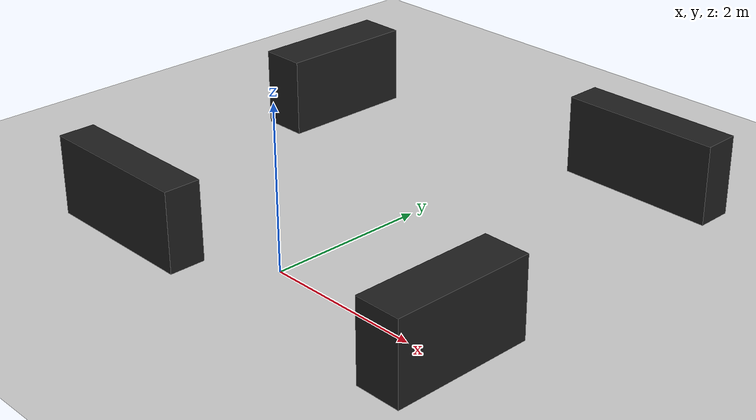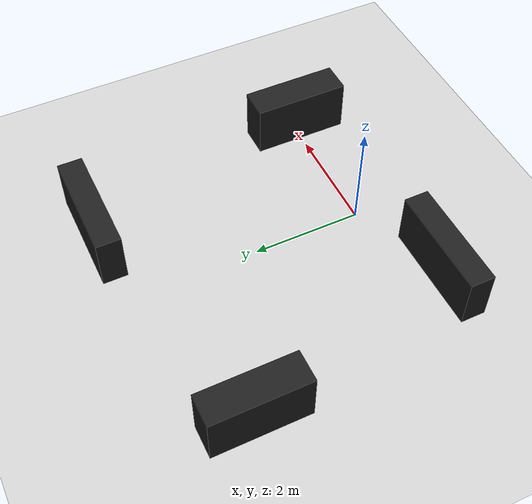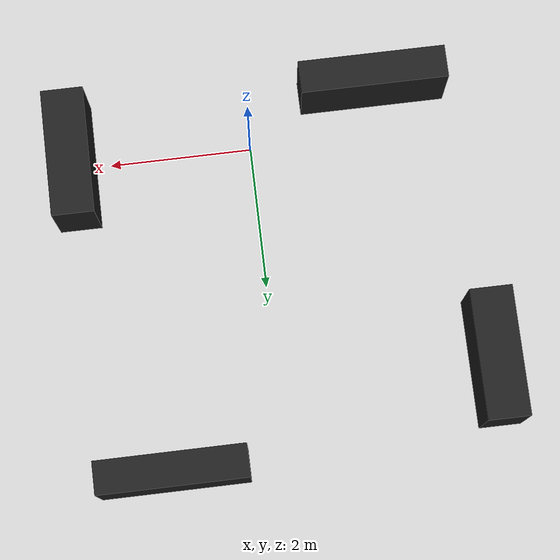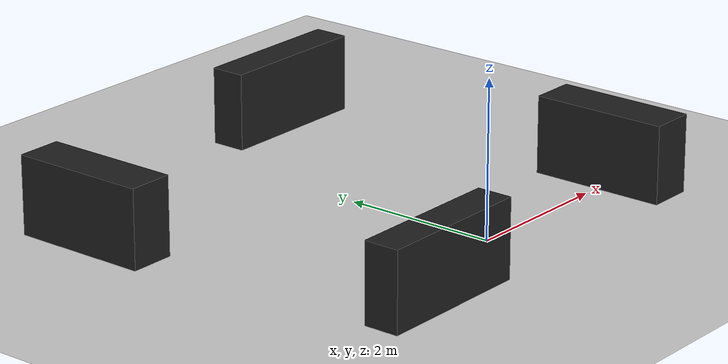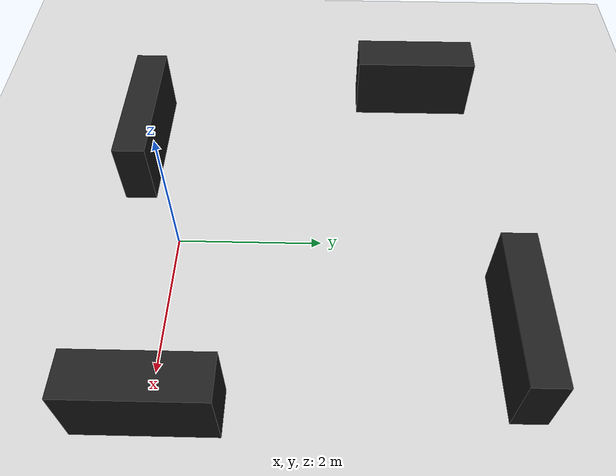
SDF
<sdf version="1.7">
 <world name="default">
  <light name="sun" type="directional">
   <pose>0 0 10 0 -0 0</pose>
   <diffuse>0.8 0.8 0.8 1</diffuse>
   <specular>0.2 0.2 0.2 1</specular>
   <attenuation>
    <range>1000</range>
    <constant>0.9</constant>
    <linear>0.01</linear>
    <quadratic>0.001</quadratic>
   </attenuation>
   <direction>-0.5 0.1 -0.9</direction>
   <spot><inner_angle>0</inner_angle><outer_angle>0</outer_angle><falloff>0</falloff></spot>
  </light>
  <model name="ground_plane">
   <static>1</static>
   <link name="link">
    <collision name="collision">
     <geometry><plane><normal>0 0 1</normal><size>100 100</size></plane></geometry>
     <surface>
      <contact><collide_bitmask>65535</collide_bitmask></contact>
      <friction><ode><mu>100</mu><mu2>50</mu2></ode></friction>
     </surface>
    </collision>
    <visual name="visual">
     <cast_shadows>0</cast_shadows>
     <geometry><plane><normal>0 0 1</normal><size>100 100</size></plane></geometry>
     <material>
      <script><uri>file://media/materials/scripts/gazebo.material</uri><name>Gazebo/Grey</name></script>
     </material>
    </visual>
   </link>
  </model>
  <gravity>0 0 -9.8</gravity>
  <magnetic_field>6e-06 2.3e-05 -4.2e-05</magnetic_field>
  <atmosphere type="adiabatic"/>
  <physics type="ode">
   <max_step_size>0.001</max_step_size>
   <real_time_factor>1</real_time_factor>
   <real_time_update_rate>1000</real_time_update_rate>
  </physics>
  <scene><ambient>0.4 0.4 0.4 1</ambient><background>0.7 0.7 0.7 1</background><shadows>1</shadows></scene>
  <audio><device>default</device></audio>
  <spherical_coordinates>
   <surface_model>EARTH_WGS84</surface_model>
   <latitude_deg>0</latitude_deg>
   <longitude_deg>0</longitude_deg>
   <elevation>0</elevation>
   <heading_deg>0</heading_deg>
  </spherical_coordinates>
  <model name="unit_box">
   <pose>2.5 0.000798 0.499993 6e-06 4e-06 1e-06</pose>
   <link name="link">
    <inertial>
     <mass>1</mass>
     <inertia>
      <ixx>0.166667</ixx>
      <ixy>0</ixy>
      <ixz>0</ixz>
      <iyy>0.166667</iyy>
      <iyz>0</iyz>
      <izz>0.166667</izz>
     </inertia>
    </inertial>
    <collision name="collision"><geometry><box><size>0.583642 1.77227 1</size></box></geometry></collision>
    <visual name="visual">
     <geometry><box><size>0.583642 1.77227 1</size></box></geometry>
     <material>
      <script><name>Gazebo/Black</name><uri>file://media/materials/scripts/gazebo.material</uri></script>
     </material>
    </visual>
   </link>
  </model>
  <model name="unit_box_0_clone">
   <pose>-1.79781 -0.676208 0.499995 0 5e-06 0.002669</pose>
   <link name="link">
    <inertial>
     <mass>1</mass>
     <inertia>
      <ixx>0.166667</ixx>
      <ixy>0</ixy>
      <ixz>0</ixz>
      <iyy>0.166667</iyy>
      <iyz>0</iyz>
      <izz>0.166667</izz>
     </inertia>
    </inertial>
    <collision name="collision"><geometry><box><size>2.04493 0.454129 1</size></box></geometry></collision>
    <visual name="visual">
     <geometry><box><size>2.04493 0.454129 1</size></box></geometry>
     <material>
      <script><name>Gazebo/Black</name><uri>file://media/materials/scripts/gazebo.material</uri></script>
     </material>
    </visual>
   </link>
  </model>
  <model name="unit_box_0_clone_clone">
   <pose>1.5302 4.46088 0.499983 0 -1.7e-05 0.002434</pose>
   <link name="link">
    <inertial>
     <mass>1</mass>
     <inertia>
      <ixx>0.166667</ixx>
      <ixy>0</ixy>
      <ixz>0</ixz>
      <iyy>0.166667</iyy>
      <iyz>0</iyz>
      <izz>0.166667</izz>
     </inertia>
    </inertial>
    <collision name="collision"><geometry><box><size>2.04493 0.454129 1</size></box></geometry></collision>
    <visual name="visual">
     <geometry><box><size>2.04493 0.454129 1</size></box></geometry>
     <material>
      <script><name>Gazebo/Black</name><uri>file://media/materials/scripts/gazebo.material</uri></script>
     </material>
    </visual>
   </link>
  </model>
  <model name="unit_box_clone">
   <pose>-2.96868 3.4284 0.499995 6e-06 -0 -1e-06</pose>
   <link name="link">
    <inertial>
     <mass>1</mass>
     <inertia>
      <ixx>0.166667</ixx>
      <ixy>0</ixy>
      <ixz>0</ixz>
      <iyy>0.166667</iyy>
      <iyz>0</iyz>
      <izz>0.166667</izz>
     </inertia>
    </inertial>
    <collision name="collision"><geometry><box><size>0.583642 1.77227 1</size></box></geometry></collision>
    <visual name="visual">
     <geometry><box><size>0.583642 1.77227 1</size></box></geometry>
     <material>
      <script><name>Gazebo/Black</name><uri>file://media/materials/scripts/gazebo.material</uri></script>
     </material>
    </visual>
   </link>
  </model>
 </world>
</sdf>
